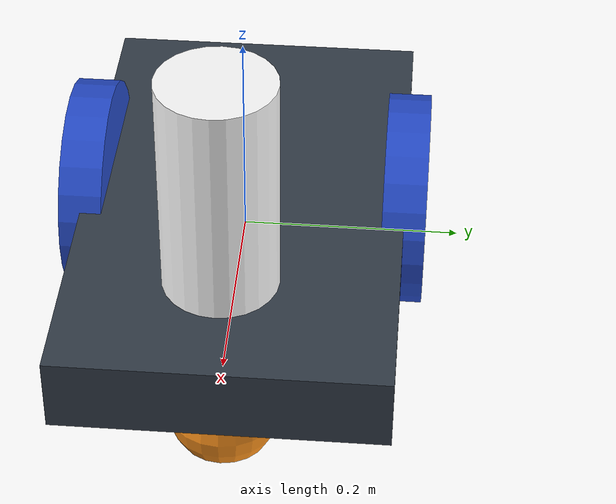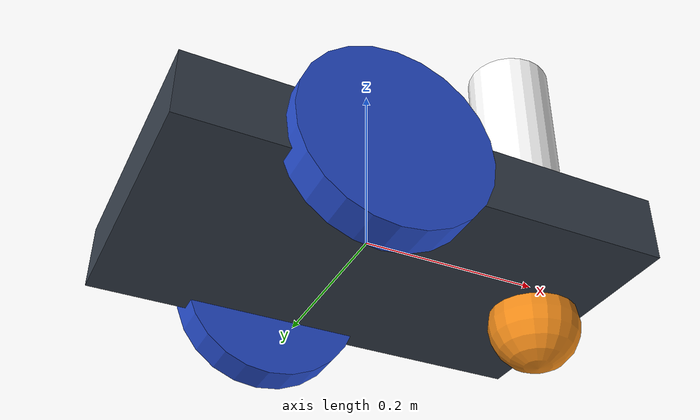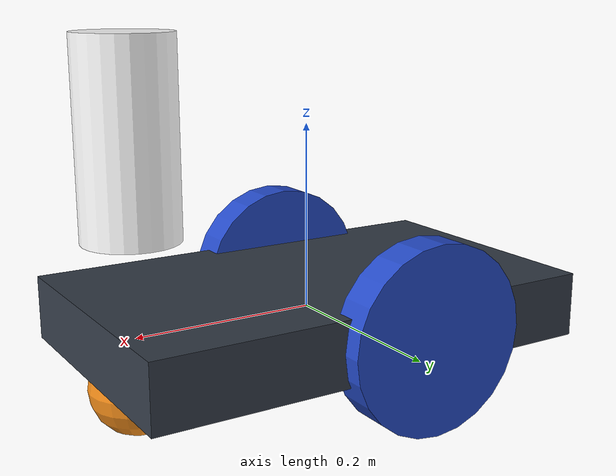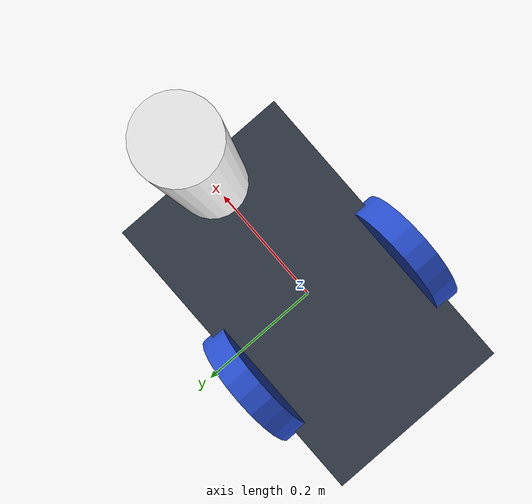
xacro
<?xml version="1.0" ?>

<robot name="m2wr" xmlns:xacro="https://www.ros.org/wiki/xacro" >

  <xacro:include filename="$(find m2wr_description)/urdf/materials.xacro" />
  <xacro:include filename="$(find m2wr_description)/urdf/gazebo.xacro" />
  <xacro:include filename="$(find m2wr_description)/urdf/macros.xacro" />

  <link name="link_chassis">
    <!-- pose and inertial -->
    <pose>0 0 0.1 0 0 0</pose>

    <inertial>
      <mass value="5"/>
      <origin rpy="0 0 0" xyz="0 0 0.1"/>
      <inertia ixx="0.0395416666667" ixy="0" ixz="0" iyy="0.106208333333" iyz="0" izz="0.106208333333"/>
    </inertial>

    <collision name="collision_chassis">
      <geometry>
        <box size="0.5 0.3 0.07"/>
      </geometry>
    </collision>

    <visual>
      <origin rpy="0 0 0" xyz="0 0 0"/>
      <geometry>
        <box size="0.5 0.3 0.07"/>
      </geometry>
      <material name="blue"/>
    </visual>

    <!-- caster front -->
    <collision name="caster_front_collision">
      <origin rpy=" 0 0 0" xyz="0.35 0 -0.05"/>
      <geometry>
        <sphere radius="0.05"/>
      </geometry>
      <surface>
        <friction>
          <ode>
            <mu>0</mu>
            <mu2>0</mu2>
            <slip1>1.0</slip1>
            <slip2>1.0</slip2>
          </ode>
        </friction>
      </surface>
    </collision>
    <visual name="caster_front_visual">
      <origin rpy=" 0 0 0" xyz="0.2 0 -0.05"/>
      <geometry>
        <sphere radius="0.05"/>
      </geometry>
    </visual>
    </link>

    <xacro:link_wheel name="link_right_wheel" />
    <xacro:joint_wheel name="joint_right_wheel"  child="link_right_wheel"  origin_xyz="-0.05 0.15 0"  />

    <xacro:link_wheel name="link_left_wheel" />
    <xacro:joint_wheel name="joint_left_wheel"   child="link_left_wheel"   origin_xyz="-0.05 -0.15 0"  />

    <xacro:sensor_laser name="link_sensor_laser" />
    <xacro:joint_sensor_laser name="joint_sensor_laser"   child="link_sensor_laser"   origin_xyz="0.2 0 0.2"  />

</robot>

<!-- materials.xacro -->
<robot name="m2wr" xmlns:xacro="https://www.ros.org/wiki/xacro" >
  <material name="black">
    <color rgba="0.0 0.0 0.0 1.0"/>
  </material>
  <material name="blue">
    <color rgba="0.203125 0.23828125 0.28515625 1.0"/>
  </material>
  <material name="green">
    <color rgba="0.0 0.8 0.0 1.0"/>
  </material>
  <material name="grey">
    <color rgba="0.2 0.2 0.2 1.0"/>
  </material>
  <material name="orange">
    <color rgba="1.0 0.423529411765 0.0392156862745 1.0"/>
  </material>
  <material name="brown">
    <color rgba="0.870588235294 0.811764705882 0.764705882353 1.0"/>
  </material>
  <material name="red">
    <color rgba="0.80078125 0.12890625 0.1328125 1.0"/>
  </material>
  <material name="white">
    <color rgba="1.0 1.0 1.0 1.0"/>
  </material>
</robot>

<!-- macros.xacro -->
<robot xmlns:xacro="http://www.ros.org/wiki/xacro">

    <xacro:macro name="link_wheel" params="name">
        <link name="${name}">
            <inertial>
              <mass value="0.2"/>
              <origin rpy="0 1.5707 1.5707" xyz="0 0 0"/>
              <inertia ixx="0.000526666666667" ixy="0" ixz="0" iyy="0.000526666666667" iyz="0" izz="0.001"/>
            </inertial>
            <collision name="link_right_wheel_collision">
              <origin rpy="0 1.5707 1.5707" xyz="0 0 0"/>
              <geometry>
                <cylinder length="0.04" radius="0.1"/>
              </geometry>
            </collision>
            <visual name="${name}_visual">
              <origin rpy="0 1.5707 1.5707" xyz="0 0 0"/>
              <geometry>
                <cylinder length="0.04" radius="0.1"/>
              </geometry>
            </visual>
        </link>
    </xacro:macro>

    <xacro:macro name="joint_wheel" params="name child origin_xyz">
      <joint name="${name}" type="continuous">
        <origin rpy="0 0 0" xyz="${origin_xyz}"/>
        <child link="${child}"/>
        <parent link="link_chassis"/>
        <axis rpy="0 0 0" xyz="0 1 0"/>
        <limit effort="10000" velocity="1000"/>
        <joint_properties damping="1.0" friction="1.0"/>
      </joint>
    </xacro:macro>

    <xacro:macro name="sensor_laser" params="name">

        <link name="${name}">
            <inertial>
            <origin xyz="0 0 0" rpy="0 0 0" />
            <mass value="1" />
            <!-- RANDOM INERTIA BELOW -->
            <inertia ixx="0.02" ixy="0" ixz="0" iyy="0.02" iyz="0" izz="0.02"/>
            </inertial>

            <visual>
            <origin xyz="0 0 0" rpy="0 0 0" />
            <geometry>
                <cylinder radius="0.05" length="0.2"/>
            </geometry>
            <material name="white" />
            </visual>

            <collision>
            <origin xyz="0 0 0" rpy="0 0 0"/>
            <geometry>
                <cylinder radius="0.05" length="0.1"/>
            </geometry>
            </collision>
        </link>

    </xacro:macro>
    <xacro:macro name="joint_sensor_laser" params="name child origin_xyz" >

        <joint name="joint_sensor_laser" type="fixed">
            <origin xyz="${origin_xyz}" rpy="0 0 0"/>
            <parent link="link_chassis"/>
            <child link="${child}"/>
        </joint>

    </xacro:macro>

</robot>
